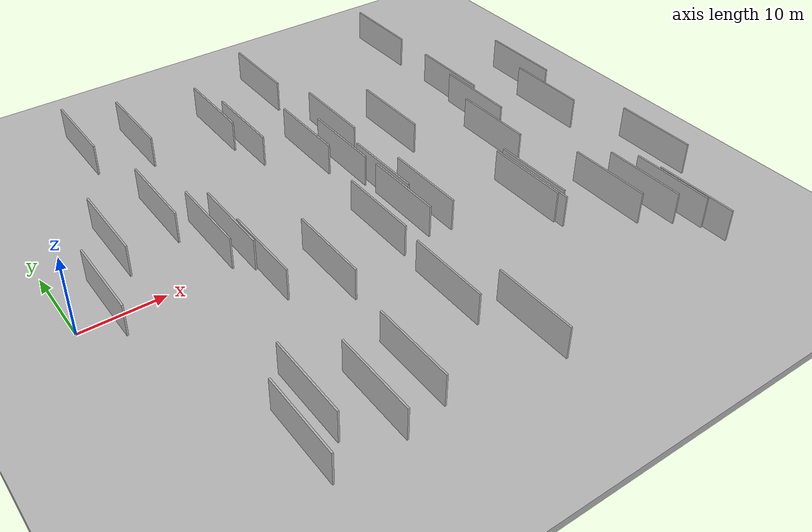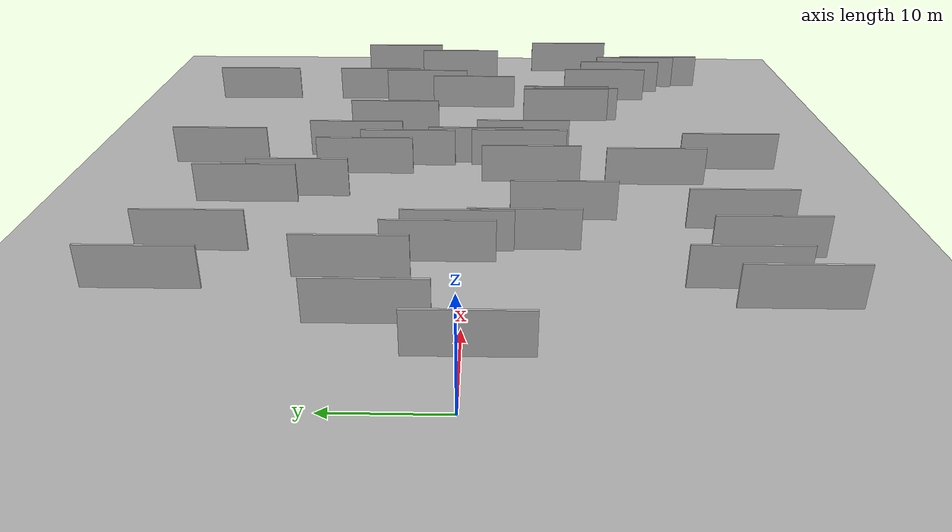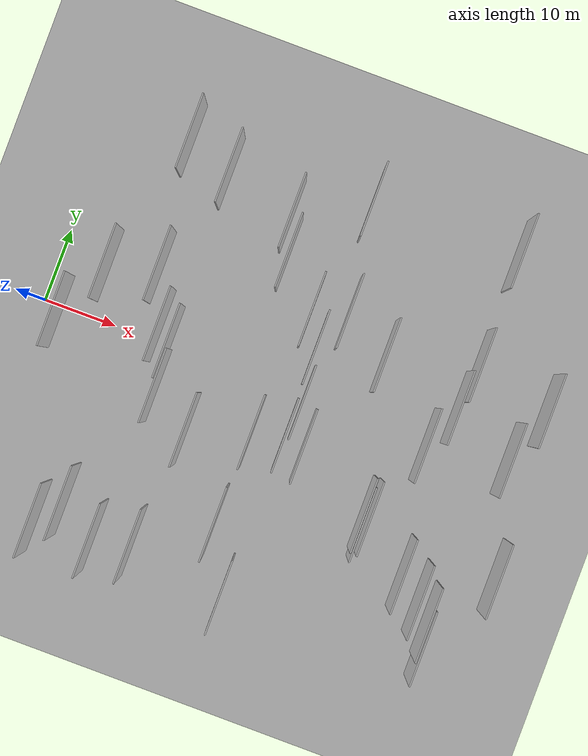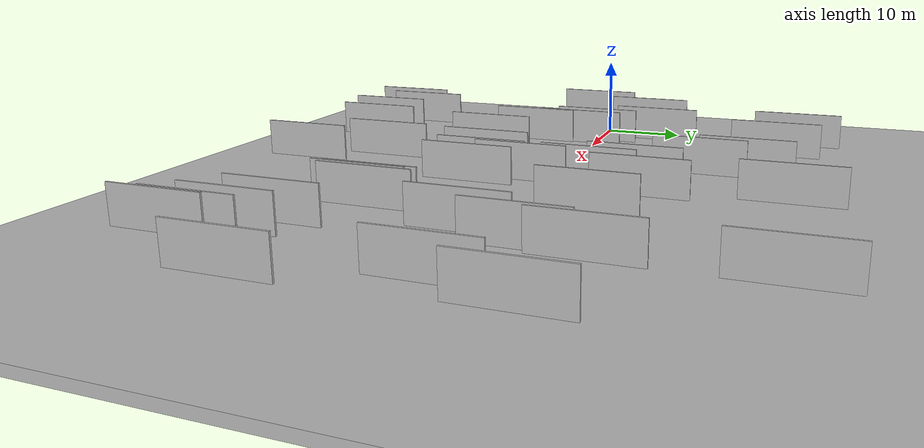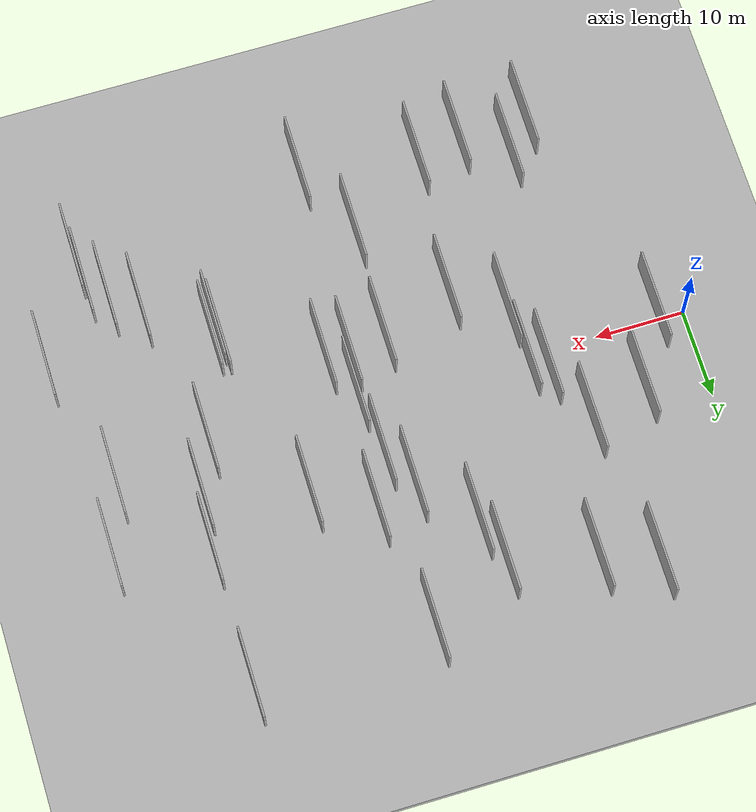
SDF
<?xml version="1.0" encoding="utf-8"?>

<sdf version="1.6">

   <world name="default">

      <gui fullscreen="0">

         <camera name="user_camera">

            <pose>-15 0 4.57585 0 0 0</pose>

            <view_controller>orbit</view_controller>

         </camera>

      </gui>

      <scene>

         <sky>

           <clouds>

             <speed>12</speed>

           </clouds>

         </sky>

         <ambient>0.4 0.4 0.4 1</ambient>

         <background>0.7 0.7 0.7 1</background>

         <shadows>1</shadows>

      </scene>

      <gravity>0 0 -9.8066</gravity>

      <magnetic_field>6e-06 2.3e-05 -4.2e-05</magnetic_field>

      <physics default="0" name="default_physics" type="ode">

         <ode>

            <solver>

               <type>quick</type>

               <iters>10</iters>

               <sor>1.0</sor>

               <use_dynamic_moi_rescaling>0</use_dynamic_moi_rescaling>

            </solver>

            <constraints>

               <cfm>0</cfm>

               <erp>0.2</erp>

               <contact_max_correcting_vel>100</contact_max_correcting_vel>

               <contact_surface_layer>0.001</contact_surface_layer>

            </constraints>

         </ode>

         <max_step_size>0.004</max_step_size>

         <real_time_factor>1</real_time_factor>

         <real_time_update_rate>250</real_time_update_rate>

      </physics>

      <light name="sun" type="directional">

         <cast_shadows>1</cast_shadows>

         <pose>0 0 10 0 0 0</pose>

         <diffuse>0.8 0.8 0.8 1</diffuse>

         <specular>0.2 0.2 0.2 1</specular>

         <attenuation>

            <range>1000</range>

            <constant>0.9</constant>

            <linear>0.01</linear>

            <quadratic>0.001</quadratic>

         </attenuation>

         <direction>-0.5 0.1 -0.9</direction>

      </light>

      <include>

         <name>ground_plane_1</name>

         <uri>model://HANNAS_ground_plane</uri>

         <pose>0 0 0  0 0 0</pose>

      </include>

      <include>

         <name>ground_plane_2</name>

         <uri>model://HANNAS_ground_plane</uri>

         <pose>100 0 0  0 0 0</pose>

      </include>

      <model name="HANNAS_wall_1">

         <static>1</static>

         <pose frame="">49.2912 -11.3729 2.5 0.000000 0.000000 1.570796</pose>

         <link name="link">

            <pose frame="">0 0 2.00 0 0 0</pose>

            <collision name="collision">

               <geometry>

                  <box>

                     <size>10.00 0.2 4.00</size>

                  </box>

               </geometry>

               <max_contacts>10</max_contacts>

               <surface>

                  <contact>

                     <ode/>

                  </contact>

                  <bounce/>

                  <friction>

                     <torsional>

                        <ode/>

                     </torsional>

                     <ode/>

                  </friction>

               </surface>

            </collision>

            <visual name="visual">

               <cast_shadows>0</cast_shadows>

               <geometry>

                  <box>

                     <size>10.00 0.2 4.00</size>

                  </box>

               </geometry>

               <material>

                  <script>

                     <uri>model://HANNAS_wall/materials/scripts</uri>

                     <uri>model://HANNAS_wall/materials/textures</uri>

                     <name>vrc/HANNAS_wall</name>

                  </script>

               </material>

            </visual>

            <self_collide>0</self_collide>

            <enable_wind>0</enable_wind>

            <kinematic>0</kinematic>

         </link>

      </model>

      <model name="HANNAS_wall_2">

         <static>1</static>

         <pose frame="">36.4695 -5.4138 2.5 0.000000 0.000000 1.570796</pose>

         <link name="link">

            <pose frame="">0 0 2.00 0 0 0</pose>

            <collision name="collision">

               <geometry>

                  <box>

                     <size>10.00 0.2 4.00</size>

                  </box>

               </geometry>

               <max_contacts>10</max_contacts>

               <surface>

                  <contact>

                     <ode/>

                  </contact>

                  <bounce/>

                  <friction>

                     <torsional>

                        <ode/>

                     </torsional>

                     <ode/>

                  </friction>

               </surface>

            </collision>

            <visual name="visual">

               <cast_shadows>0</cast_shadows>

               <geometry>

                  <box>

                     <size>10.00 0.2 4.00</size>

                  </box>

               </geometry>

               <material>

                  <script>

                     <uri>model://HANNAS_wall/materials/scripts</uri>

                     <uri>model://HANNAS_wall/materials/textures</uri>

                     <name>vrc/HANNAS_wall</name>

                  </script>

               </material>

            </visual>

            <self_collide>0</self_collide>

            <enable_wind>0</enable_wind>

            <kinematic>0</kinematic>

         </link>

      </model>

      <model name="HANNAS_wall_3">

         <static>1</static>

         <pose frame="">44.9676 8.5489 2.5 0.000000 0.000000 1.570796</pose>

         <link name="link">

            <pose frame="">0 0 2.00 0 0 0</pose>

            <collision name="collision">

               <geometry>

                  <box>

                     <size>10.00 0.2 4.00</size>

                  </box>

               </geometry>

               <max_contacts>10</max_contacts>

               <surface>

                  <contact>

                     <ode/>

                  </contact>

                  <bounce/>

                  <friction>

                     <torsional>

                        <ode/>

                     </torsional>

                     <ode/>

                  </friction>

               </surface>

            </collision>

            <visual name="visual">

               <cast_shadows>0</cast_shadows>

               <geometry>

                  <box>

                     <size>10.00 0.2 4.00</size>

                  </box>

               </geometry>

               <material>

                  <script>

                     <uri>model://HANNAS_wall/materials/scripts</uri>

                     <uri>model://HANNAS_wall/materials/textures</uri>

                     <name>vrc/HANNAS_wall</name>

                  </script>

               </material>

            </visual>

            <self_collide>0</self_collide>

            <enable_wind>0</enable_wind>

            <kinematic>0</kinematic>

         </link>

      </model>

      <model name="HANNAS_wall_4">

         <static>1</static>

         <pose frame="">7.3157 7.1480 2.5 0.000000 0.000000 1.570796</pose>

         <link name="link">

            <pose frame="">0 0 2.00 0 0 0</pose>

            <collision name="collision">

               <geometry>

                  <box>

                     <size>10.00 0.2 4.00</size>

                  </box>

               </geometry>

               <max_contacts>10</max_contacts>

               <surface>

                  <contact>

                     <ode/>

                  </contact>

                  <bounce/>

                  <friction>

                     <torsional>

                        <ode/>

                     </torsional>

                     <ode/>

                  </friction>

               </surface>

            </collision>

            <visual name="visual">

               <cast_shadows>0</cast_shadows>

               <geometry>

                  <box>

                     <size>10.00 0.2 4.00</size>

                  </box>

               </geometry>

               <material>

                  <script>

                     <uri>model://HANNAS_wall/materials/scripts</uri>

                     <uri>model://HANNAS_wall/materials/textures</uri>

                     <name>vrc/HANNAS_wall</name>

                  </script>

               </material>

            </visual>

            <self_collide>0</self_collide>

            <enable_wind>0</enable_wind>

            <kinematic>0</kinematic>

         </link>

      </model>

      <model name="HANNAS_wall_5">

         <static>1</static>

         <pose frame="">35.7856 -27.3494 2.5 0.000000 0.000000 1.570796</pose>

         <link name="link">

            <pose frame="">0 0 2.00 0 0 0</pose>

            <collision name="collision">

               <geometry>

                  <box>

                     <size>10.00 0.2 4.00</size>

                  </box>

               </geometry>

               <max_contacts>10</max_contacts>

               <surface>

                  <contact>

                     <ode/>

                  </contact>

                  <bounce/>

                  <friction>

                     <torsional>

                        <ode/>

                     </torsional>

                     <ode/>

                  </friction>

               </surface>

            </collision>

            <visual name="visual">

               <cast_shadows>0</cast_shadows>

               <geometry>

                  <box>

                     <size>10.00 0.2 4.00</size>

                  </box>

               </geometry>

               <material>

                  <script>

                     <uri>model://HANNAS_wall/materials/scripts</uri>

                     <uri>model://HANNAS_wall/materials/textures</uri>

                     <name>vrc/HANNAS_wall</name>

                  </script>

               </material>

            </visual>

            <self_collide>0</self_collide>

            <enable_wind>0</enable_wind>

            <kinematic>0</kinematic>

         </link>

      </model>

      <model name="HANNAS_wall_6">

         <static>1</static>

         <pose frame="">3.3829 -0.7247 2.5 0.000000 0.000000 1.570796</pose>

         <link name="link">

            <pose frame="">0 0 2.00 0 0 0</pose>

            <collision name="collision">

               <geometry>

                  <box>

                     <size>10.00 0.2 4.00</size>

                  </box>

               </geometry>

               <max_contacts>10</max_contacts>

               <surface>

                  <contact>

                     <ode/>

                  </contact>

                  <bounce/>

                  <friction>

                     <torsional>

                        <ode/>

                     </torsional>

                     <ode/>

                  </friction>

               </surface>

            </collision>

            <visual name="visual">

               <cast_shadows>0</cast_shadows>

               <geometry>

                  <box>

                     <size>10.00 0.2 4.00</size>

                  </box>

               </geometry>

               <material>

                  <script>

                     <uri>model://HANNAS_wall/materials/scripts</uri>

                     <uri>model://HANNAS_wall/materials/textures</uri>

                     <name>vrc/HANNAS_wall</name>

                  </script>

               </material>

            </visual>

            <self_collide>0</self_collide>

            <enable_wind>0</enable_wind>

            <kinematic>0</kinematic>

         </link>

      </model>

      <model name="HANNAS_wall_7">

         <static>1</static>

         <pose frame="">56.6194 11.5562 2.5 0.000000 0.000000 1.570796</pose>

         <link name="link">

            <pose frame="">0 0 2.00 0 0 0</pose>

            <collision name="collision">

               <geometry>

                  <box>

                     <size>10.00 0.2 4.00</size>

                  </box>

               </geometry>

               <max_contacts>10</max_contacts>

               <surface>

                  <contact>

                     <ode/>

                  </contact>

                  <bounce/>

                  <friction>

                     <torsional>

                        <ode/>

                     </torsional>

                     <ode/>

                  </friction>

               </surface>

            </collision>

            <visual name="visual">

               <cast_shadows>0</cast_shadows>

               <geometry>

                  <box>

                     <size>10.00 0.2 4.00</size>

                  </box>

               </geometry>

               <material>

                  <script>

                     <uri>model://HANNAS_wall/materials/scripts</uri>

                     <uri>model://HANNAS_wall/materials/textures</uri>

                     <name>vrc/HANNAS_wall</name>

                  </script>

               </material>

            </visual>

            <self_collide>0</self_collide>

            <enable_wind>0</enable_wind>

            <kinematic>0</kinematic>

         </link>

      </model>

      <model name="HANNAS_wall_8">

         <static>1</static>

         <pose frame="">18.6774 -5.3102 2.5 0.000000 0.000000 1.570796</pose>

         <link name="link">

            <pose frame="">0 0 2.00 0 0 0</pose>

            <collision name="collision">

               <geometry>

                  <box>

                     <size>10.00 0.2 4.00</size>

                  </box>

               </geometry>

               <max_contacts>10</max_contacts>

               <surface>

                  <contact>

                     <ode/>

                  </contact>

                  <bounce/>

                  <friction>

                     <torsional>

                        <ode/>

                     </torsional>

                     <ode/>

                  </friction>

               </surface>

            </collision>

            <visual name="visual">

               <cast_shadows>0</cast_shadows>

               <geometry>

                  <box>

                     <size>10.00 0.2 4.00</size>

                  </box>

               </geometry>

               <material>

                  <script>

                     <uri>model://HANNAS_wall/materials/scripts</uri>

                     <uri>model://HANNAS_wall/materials/textures</uri>

                     <name>vrc/HANNAS_wall</name>

                  </script>

               </material>

            </visual>

            <self_collide>0</self_collide>

            <enable_wind>0</enable_wind>

            <kinematic>0</kinematic>

         </link>

      </model>

      <model name="HANNAS_wall_9">

         <static>1</static>

         <pose frame="">50.1798 -11.4705 2.5 0.000000 0.000000 1.570796</pose>

         <link name="link">

            <pose frame="">0 0 2.00 0 0 0</pose>

            <collision name="collision">

               <geometry>

                  <box>

                     <size>10.00 0.2 4.00</size>

                  </box>

               </geometry>

               <max_contacts>10</max_contacts>

               <surface>

                  <contact>

                     <ode/>

                  </contact>

                  <bounce/>

                  <friction>

                     <torsional>

                        <ode/>

                     </torsional>

                     <ode/>

                  </friction>

               </surface>

            </collision>

            <visual name="visual">

               <cast_shadows>0</cast_shadows>

               <geometry>

                  <box>

                     <size>10.00 0.2 4.00</size>

                  </box>

               </geometry>

               <material>

                  <script>

                     <uri>model://HANNAS_wall/materials/scripts</uri>

                     <uri>model://HANNAS_wall/materials/textures</uri>

                     <name>vrc/HANNAS_wall</name>

                  </script>

               </material>

            </visual>

            <self_collide>0</self_collide>

            <enable_wind>0</enable_wind>

            <kinematic>0</kinematic>

         </link>

      </model>

      <model name="HANNAS_wall_10">

         <static>1</static>

         <pose frame="">62.0942 -24.4419 2.5 0.000000 0.000000 1.570796</pose>

         <link name="link">

            <pose frame="">0 0 2.00 0 0 0</pose>

            <collision name="collision">

               <geometry>

                  <box>

                     <size>10.00 0.2 4.00</size>

                  </box>

               </geometry>

               <max_contacts>10</max_contacts>

               <surface>

                  <contact>

                     <ode/>

                  </contact>

                  <bounce/>

                  <friction>

                     <torsional>

                        <ode/>

                     </torsional>

                     <ode/>

                  </friction>

               </surface>

            </collision>

            <visual name="visual">

               <cast_shadows>0</cast_shadows>

               <geometry>

                  <box>

                     <size>10.00 0.2 4.00</size>

                  </box>

               </geometry>

               <material>

                  <script>

                     <uri>model://HANNAS_wall/materials/scripts</uri>

                     <uri>model://HANNAS_wall/materials/textures</uri>

                     <name>vrc/HANNAS_wall</name>

                  </script>

               </material>

            </visual>

            <self_collide>0</self_collide>

            <enable_wind>0</enable_wind>

            <kinematic>0</kinematic>

         </link>

      </model>

      <model name="HANNAS_wall_11">

         <static>1</static>

         <pose frame="">55.9603 5.5726 2.5 0.000000 0.000000 1.570796</pose>

         <link name="link">

            <pose frame="">0 0 2.00 0 0 0</pose>

            <collision name="collision">

               <geometry>

                  <box>

                     <size>10.00 0.2 4.00</size>

                  </box>

               </geometry>

               <max_contacts>10</max_contacts>

               <surface>

                  <contact>

                     <ode/>

                  </contact>

                  <bounce/>

                  <friction>

                     <torsional>

                        <ode/>

                     </torsional>

                     <ode/>

                  </friction>

               </surface>

            </collision>

            <visual name="visual">

               <cast_shadows>0</cast_shadows>

               <geometry>

                  <box>

                     <size>10.00 0.2 4.00</size>

                  </box>

               </geometry>

               <material>

                  <script>

                     <uri>model://HANNAS_wall/materials/scripts</uri>

                     <uri>model://HANNAS_wall/materials/textures</uri>

                     <name>vrc/HANNAS_wall</name>

                  </script>

               </material>

            </visual>

            <self_collide>0</self_collide>

            <enable_wind>0</enable_wind>

            <kinematic>0</kinematic>

         </link>

      </model>

      <model name="HANNAS_wall_12">

         <static>1</static>

         <pose frame="">59.7716 -19.1227 2.5 0.000000 0.000000 1.570796</pose>

         <link name="link">

            <pose frame="">0 0 2.00 0 0 0</pose>

            <collision name="collision">

               <geometry>

                  <box>

                     <size>10.00 0.2 4.00</size>

                  </box>

               </geometry>

               <max_contacts>10</max_contacts>

               <surface>

                  <contact>

                     <ode/>

                  </contact>

                  <bounce/>

                  <friction>

                     <torsional>

                        <ode/>

                     </torsional>

                     <ode/>

                  </friction>

               </surface>

            </collision>

            <visual name="visual">

               <cast_shadows>0</cast_shadows>

               <geometry>

                  <box>

                     <size>10.00 0.2 4.00</size>

                  </box>

               </geometry>

               <material>

                  <script>

                     <uri>model://HANNAS_wall/materials/scripts</uri>

                     <uri>model://HANNAS_wall/materials/textures</uri>

                     <name>vrc/HANNAS_wall</name>

                  </script>

               </material>

            </visual>

            <self_collide>0</self_collide>

            <enable_wind>0</enable_wind>

            <kinematic>0</kinematic>

         </link>

      </model>

      <model name="HANNAS_wall_13">

         <static>1</static>

         <pose frame="">66.8213 9.1804 2.5 0.000000 0.000000 1.570796</pose>

         <link name="link">

            <pose frame="">0 0 2.00 0 0 0</pose>

            <collision name="collision">

               <geometry>

                  <box>

                     <size>10.00 0.2 4.00</size>

                  </box>

               </geometry>

               <max_contacts>10</max_contacts>

               <surface>

                  <contact>

                     <ode/>

                  </contact>

                  <bounce/>

                  <friction>

                     <torsional>

                        <ode/>

                     </torsional>

                     <ode/>

                  </friction>

               </surface>

            </collision>

            <visual name="visual">

               <cast_shadows>0</cast_shadows>

               <geometry>

                  <box>

                     <size>10.00 0.2 4.00</size>

                  </box>

               </geometry>

               <material>

                  <script>

                     <uri>model://HANNAS_wall/materials/scripts</uri>

                     <uri>model://HANNAS_wall/materials/textures</uri>

                     <name>vrc/HANNAS_wall</name>

                  </script>

               </material>

            </visual>

            <self_collide>0</self_collide>

            <enable_wind>0</enable_wind>

            <kinematic>0</kinematic>

         </link>

      </model>

      <model name="HANNAS_wall_14">

         <static>1</static>

         <pose frame="">61.7658 -21.4161 2.5 0.000000 0.000000 1.570796</pose>

         <link name="link">

            <pose frame="">0 0 2.00 0 0 0</pose>

            <collision name="collision">

               <geometry>

                  <box>

                     <size>10.00 0.2 4.00</size>

                  </box>

               </geometry>

               <max_contacts>10</max_contacts>

               <surface>

                  <contact>

                     <ode/>

                  </contact>

                  <bounce/>

                  <friction>

                     <torsional>

                        <ode/>

                     </torsional>

                     <ode/>

                  </friction>

               </surface>

            </collision>

            <visual name="visual">

               <cast_shadows>0</cast_shadows>

               <geometry>

                  <box>

                     <size>10.00 0.2 4.00</size>

                  </box>

               </geometry>

               <material>

                  <script>

                     <uri>model://HANNAS_wall/materials/scripts</uri>

                     <uri>model://HANNAS_wall/materials/textures</uri>

                     <name>vrc/HANNAS_wall</name>

                  </script>

               </material>

            </visual>

            <self_collide>0</self_collide>

            <enable_wind>0</enable_wind>

            <kinematic>0</kinematic>

         </link>

      </model>

      <model name="HANNAS_wall_15">

         <static>1</static>

         <pose frame="">53.7543 -0.3643 2.5 0.000000 0.000000 1.570796</pose>

         <link name="link">

            <pose frame="">0 0 2.00 0 0 0</pose>

            <collision name="collision">

               <geometry>

                  <box>

                     <size>10.00 0.2 4.00</size>

                  </box>

               </geometry>

               <max_contacts>10</max_contacts>

               <surface>

                  <contact>

                     <ode/>

                  </contact>

                  <bounce/>

                  <friction>

                     <torsional>

                        <ode/>

                     </torsional>

                     <ode/>

                  </friction>

               </surface>

            </collision>

            <visual name="visual">

               <cast_shadows>0</cast_shadows>

               <geometry>

                  <box>

                     <size>10.00 0.2 4.00</size>

                  </box>

               </geometry>

               <material>

                  <script>

                     <uri>model://HANNAS_wall/materials/scripts</uri>

                     <uri>model://HANNAS_wall/materials/textures</uri>

                     <name>vrc/HANNAS_wall</name>

                  </script>

               </material>

            </visual>

            <self_collide>0</self_collide>

            <enable_wind>0</enable_wind>

            <kinematic>0</kinematic>

         </link>

      </model>

      <model name="HANNAS_wall_16">

         <static>1</static>

         <pose frame="">18.3371 0.5597 2.5 0.000000 0.000000 1.570796</pose>

         <link name="link">

            <pose frame="">0 0 2.00 0 0 0</pose>

            <collision name="collision">

               <geometry>

                  <box>

                     <size>10.00 0.2 4.00</size>

                  </box>

               </geometry>

               <max_contacts>10</max_contacts>

               <surface>

                  <contact>

                     <ode/>

                  </contact>

                  <bounce/>

                  <friction>

                     <torsional>

                        <ode/>

                     </torsional>

                     <ode/>

                  </friction>

               </surface>

            </collision>

            <visual name="visual">

               <cast_shadows>0</cast_shadows>

               <geometry>

                  <box>

                     <size>10.00 0.2 4.00</size>

                  </box>

               </geometry>

               <material>

                  <script>

                     <uri>model://HANNAS_wall/materials/scripts</uri>

                     <uri>model://HANNAS_wall/materials/textures</uri>

                     <name>vrc/HANNAS_wall</name>

                  </script>

               </material>

            </visual>

            <self_collide>0</self_collide>

            <enable_wind>0</enable_wind>

            <kinematic>0</kinematic>

         </link>

      </model>

      <model name="HANNAS_wall_17">

         <static>1</static>

         <pose frame="">12.7365 -23.2910 2.5 0.000000 0.000000 1.570796</pose>

         <link name="link">

            <pose frame="">0 0 2.00 0 0 0</pose>

            <collision name="collision">

               <geometry>

                  <box>

                     <size>10.00 0.2 4.00</size>

                  </box>

               </geometry>

               <max_contacts>10</max_contacts>

               <surface>

                  <contact>

                     <ode/>

                  </contact>

                  <bounce/>

                  <friction>

                     <torsional>

                        <ode/>

                     </torsional>

                     <ode/>

                  </friction>

               </surface>

            </collision>

            <visual name="visual">

               <cast_shadows>0</cast_shadows>

               <geometry>

                  <box>

                     <size>10.00 0.2 4.00</size>

                  </box>

               </geometry>

               <material>

                  <script>

                     <uri>model://HANNAS_wall/materials/scripts</uri>

                     <uri>model://HANNAS_wall/materials/textures</uri>

                     <name>vrc/HANNAS_wall</name>

                  </script>

               </material>

            </visual>

            <self_collide>0</self_collide>

            <enable_wind>0</enable_wind>

            <kinematic>0</kinematic>

         </link>

      </model>

      <model name="HANNAS_wall_18">

         <static>1</static>

         <pose frame="">36.5861 26.3252 2.5 0.000000 0.000000 1.570796</pose>

         <link name="link">

            <pose frame="">0 0 2.00 0 0 0</pose>

            <collision name="collision">

               <geometry>

                  <box>

                     <size>10.00 0.2 4.00</size>

                  </box>

               </geometry>

               <max_contacts>10</max_contacts>

               <surface>

                  <contact>

                     <ode/>

                  </contact>

                  <bounce/>

                  <friction>

                     <torsional>

                        <ode/>

                     </torsional>

                     <ode/>

                  </friction>

               </surface>

            </collision>

            <visual name="visual">

               <cast_shadows>0</cast_shadows>

               <geometry>

                  <box>

                     <size>10.00 0.2 4.00</size>

                  </box>

               </geometry>

               <material>

                  <script>

                     <uri>model://HANNAS_wall/materials/scripts</uri>

                     <uri>model://HANNAS_wall/materials/textures</uri>

                     <name>vrc/HANNAS_wall</name>

                  </script>

               </material>

            </visual>

            <self_collide>0</self_collide>

            <enable_wind>0</enable_wind>

            <kinematic>0</kinematic>

         </link>

      </model>

      <model name="HANNAS_wall_19">

         <static>1</static>

         <pose frame="">11.8592 26.2166 2.5 0.000000 0.000000 1.570796</pose>

         <link name="link">

            <pose frame="">0 0 2.00 0 0 0</pose>

            <collision name="collision">

               <geometry>

                  <box>

                     <size>10.00 0.2 4.00</size>

                  </box>

               </geometry>

               <max_contacts>10</max_contacts>

               <surface>

                  <contact>

                     <ode/>

                  </contact>

                  <bounce/>

                  <friction>

                     <torsional>

                        <ode/>

                     </torsional>

                     <ode/>

                  </friction>

               </surface>

            </collision>

            <visual name="visual">

               <cast_shadows>0</cast_shadows>

               <geometry>

                  <box>

                     <size>10.00 0.2 4.00</size>

                  </box>

               </geometry>

               <material>

                  <script>

                     <uri>model://HANNAS_wall/materials/scripts</uri>

                     <uri>model://HANNAS_wall/materials/textures</uri>

                     <name>vrc/HANNAS_wall</name>

                  </script>

               </material>

            </visual>

            <self_collide>0</self_collide>

            <enable_wind>0</enable_wind>

            <kinematic>0</kinematic>

         </link>

      </model>

      <model name="HANNAS_wall_20">

         <static>1</static>

         <pose frame="">56.5438 26.7962 2.5 0.000000 0.000000 1.570796</pose>

         <link name="link">

            <pose frame="">0 0 2.00 0 0 0</pose>

            <collision name="collision">

               <geometry>

                  <box>

                     <size>10.00 0.2 4.00</size>

                  </box>

               </geometry>

               <max_contacts>10</max_contacts>

               <surface>

                  <contact>

                     <ode/>

                  </contact>

                  <bounce/>

                  <friction>

                     <torsional>

                        <ode/>

                     </torsional>

                     <ode/>

                  </friction>

               </surface>

            </collision>

            <visual name="visual">

               <cast_shadows>0</cast_shadows>

               <geometry>

                  <box>

                     <size>10.00 0.2 4.00</size>

                  </box>

               </geometry>

               <material>

                  <script>

                     <uri>model://HANNAS_wall/materials/scripts</uri>

                     <uri>model://HANNAS_wall/materials/textures</uri>

                     <name>vrc/HANNAS_wall</name>

                  </script>

               </material>

            </visual>

            <self_collide>0</self_collide>

            <enable_wind>0</enable_wind>

            <kinematic>0</kinematic>

         </link>

      </model>

      <model name="HANNAS_wall_21">

         <static>1</static>

         <pose frame="">64.3888 1.6308 2.5 0.000000 0.000000 1.570796</pose>

         <link name="link">

            <pose frame="">0 0 2.00 0 0 0</pose>

            <collision name="collision">

               <geometry>

                  <box>

                     <size>10.00 0.2 4.00</size>

                  </box>

               </geometry>

               <max_contacts>10</max_contacts>

               <surface>

                  <contact>

                     <ode/>

                  </contact>

                  <bounce/>

                  <friction>

                     <torsional>

                        <ode/>

                     </torsional>

                     <ode/>

                  </friction>

               </surface>

            </collision>

            <visual name="visual">

               <cast_shadows>0</cast_shadows>

               <geometry>

                  <box>

                     <size>10.00 0.2 4.00</size>

                  </box>

               </geometry>

               <material>

                  <script>

                     <uri>model://HANNAS_wall/materials/scripts</uri>

                     <uri>model://HANNAS_wall/materials/textures</uri>

                     <name>vrc/HANNAS_wall</name>

                  </script>

               </material>

            </visual>

            <self_collide>0</self_collide>

            <enable_wind>0</enable_wind>

            <kinematic>0</kinematic>

         </link>

      </model>

      <model name="HANNAS_wall_22">

         <static>1</static>

         <pose frame="">68.1017 -13.1992 2.5 0.000000 0.000000 1.570796</pose>

         <link name="link">

            <pose frame="">0 0 2.00 0 0 0</pose>

            <collision name="collision">

               <geometry>

                  <box>

                     <size>10.00 0.2 4.00</size>

                  </box>

               </geometry>

               <max_contacts>10</max_contacts>

               <surface>

                  <contact>

                     <ode/>

                  </contact>

                  <bounce/>

                  <friction>

                     <torsional>

                        <ode/>

                     </torsional>

                     <ode/>

                  </friction>

               </surface>

            </collision>

            <visual name="visual">

               <cast_shadows>0</cast_shadows>

               <geometry>

                  <box>

                     <size>10.00 0.2 4.00</size>

                  </box>

               </geometry>

               <material>

                  <script>

                     <uri>model://HANNAS_wall/materials/scripts</uri>

                     <uri>model://HANNAS_wall/materials/textures</uri>

                     <name>vrc/HANNAS_wall</name>

                  </script>

               </material>

            </visual>

            <self_collide>0</self_collide>

            <enable_wind>0</enable_wind>

            <kinematic>0</kinematic>

         </link>

      </model>

      <model name="HANNAS_wall_23">

         <static>1</static>

         <pose frame="">37.0577 -0.7599 2.5 0.000000 0.000000 1.570796</pose>

         <link name="link">

            <pose frame="">0 0 2.00 0 0 0</pose>

            <collision name="collision">

               <geometry>

                  <box>

                     <size>10.00 0.2 4.00</size>

                  </box>

               </geometry>

               <max_contacts>10</max_contacts>

               <surface>

                  <contact>

                     <ode/>

                  </contact>

                  <bounce/>

                  <friction>

                     <torsional>

                        <ode/>

                     </torsional>

                     <ode/>

                  </friction>

               </surface>

            </collision>

            <visual name="visual">

               <cast_shadows>0</cast_shadows>

               <geometry>

                  <box>

                     <size>10.00 0.2 4.00</size>

                  </box>

               </geometry>

               <material>

                  <script>

                     <uri>model://HANNAS_wall/materials/scripts</uri>

                     <uri>model://HANNAS_wall/materials/textures</uri>

                     <name>vrc/HANNAS_wall</name>

                  </script>

               </material>

            </visual>

            <self_collide>0</self_collide>

            <enable_wind>0</enable_wind>

            <kinematic>0</kinematic>

         </link>

      </model>

      <model name="HANNAS_wall_24">

         <static>1</static>

         <pose frame="">49.5408 -12.4997 2.5 0.000000 0.000000 1.570796</pose>

         <link name="link">

            <pose frame="">0 0 2.00 0 0 0</pose>

            <collision name="collision">

               <geometry>

                  <box>

                     <size>10.00 0.2 4.00</size>

                  </box>

               </geometry>

               <max_contacts>10</max_contacts>

               <surface>

                  <contact>

                     <ode/>

                  </contact>

                  <bounce/>

                  <friction>

                     <torsional>

                        <ode/>

                     </torsional>

                     <ode/>

                  </friction>

               </surface>

            </collision>

            <visual name="visual">

               <cast_shadows>0</cast_shadows>

               <geometry>

                  <box>

                     <size>10.00 0.2 4.00</size>

                  </box>

               </geometry>

               <material>

                  <script>

                     <uri>model://HANNAS_wall/materials/scripts</uri>

                     <uri>model://HANNAS_wall/materials/textures</uri>

                     <name>vrc/HANNAS_wall</name>

                  </script>

               </material>

            </visual>

            <self_collide>0</self_collide>

            <enable_wind>0</enable_wind>

            <kinematic>0</kinematic>

         </link>

      </model>

      <model name="HANNAS_wall_25">

         <static>1</static>

         <pose frame="">34.1021 10.6718 2.5 0.000000 0.000000 1.570796</pose>

         <link name="link">

            <pose frame="">0 0 2.00 0 0 0</pose>

            <collision name="collision">

               <geometry>

                  <box>

                     <size>10.00 0.2 4.00</size>

                  </box>

               </geometry>

               <max_contacts>10</max_contacts>

               <surface>

                  <contact>

                     <ode/>

                  </contact>

                  <bounce/>

                  <friction>

                     <torsional>

                        <ode/>

                     </torsional>

                     <ode/>

                  </friction>

               </surface>

            </collision>

            <visual name="visual">

               <cast_shadows>0</cast_shadows>

               <geometry>

                  <box>

                     <size>10.00 0.2 4.00</size>

                  </box>

               </geometry>

               <material>

                  <script>

                     <uri>model://HANNAS_wall/materials/scripts</uri>

                     <uri>model://HANNAS_wall/materials/textures</uri>

                     <name>vrc/HANNAS_wall</name>

                  </script>

               </material>

            </visual>

            <self_collide>0</self_collide>

            <enable_wind>0</enable_wind>

            <kinematic>0</kinematic>

         </link>

      </model>

      <model name="HANNAS_wall_26">

         <static>1</static>

         <pose frame="">16.4777 2.1630 2.5 0.000000 0.000000 1.570796</pose>

         <link name="link">

            <pose frame="">0 0 2.00 0 0 0</pose>

            <collision name="collision">

               <geometry>

                  <box>

                     <size>10.00 0.2 4.00</size>

                  </box>

               </geometry>

               <max_contacts>10</max_contacts>

               <surface>

                  <contact>

                     <ode/>

                  </contact>

                  <bounce/>

                  <friction>

                     <torsional>

                        <ode/>

                     </torsional>

                     <ode/>

                  </friction>

               </surface>

            </collision>

            <visual name="visual">

               <cast_shadows>0</cast_shadows>

               <geometry>

                  <box>

                     <size>10.00 0.2 4.00</size>

                  </box>

               </geometry>

               <material>

                  <script>

                     <uri>model://HANNAS_wall/materials/scripts</uri>

                     <uri>model://HANNAS_wall/materials/textures</uri>

                     <name>vrc/HANNAS_wall</name>

                  </script>

               </material>

            </visual>

            <self_collide>0</self_collide>

            <enable_wind>0</enable_wind>

            <kinematic>0</kinematic>

         </link>

      </model>

      <model name="HANNAS_wall_27">

         <static>1</static>

         <pose frame="">28.7744 16.5775 2.5 0.000000 0.000000 1.570796</pose>

         <link name="link">

            <pose frame="">0 0 2.00 0 0 0</pose>

            <collision name="collision">

               <geometry>

                  <box>

                     <size>10.00 0.2 4.00</size>

                  </box>

               </geometry>

               <max_contacts>10</max_contacts>

               <surface>

                  <contact>

                     <ode/>

                  </contact>

                  <bounce/>

                  <friction>

                     <torsional>

                        <ode/>

                     </torsional>

                     <ode/>

                  </friction>

               </surface>

            </collision>

            <visual name="visual">

               <cast_shadows>0</cast_shadows>

               <geometry>

                  <box>

                     <size>10.00 0.2 4.00</size>

                  </box>

               </geometry>

               <material>

                  <script>

                     <uri>model://HANNAS_wall/materials/scripts</uri>

                     <uri>model://HANNAS_wall/materials/textures</uri>

                     <name>vrc/HANNAS_wall</name>

                  </script>

               </material>

            </visual>

            <self_collide>0</self_collide>

            <enable_wind>0</enable_wind>

            <kinematic>0</kinematic>

         </link>

      </model>

      <model name="HANNAS_wall_28">

         <static>1</static>

         <pose frame="">13.8453 9.2939 2.5 0.000000 0.000000 1.570796</pose>

         <link name="link">

            <pose frame="">0 0 2.00 0 0 0</pose>

            <collision name="collision">

               <geometry>

                  <box>

                     <size>10.00 0.2 4.00</size>

                  </box>

               </geometry>

               <max_contacts>10</max_contacts>

               <surface>

                  <contact>

                     <ode/>

                  </contact>

                  <bounce/>

                  <friction>

                     <torsional>

                        <ode/>

                     </torsional>

                     <ode/>

                  </friction>

               </surface>

            </collision>

            <visual name="visual">

               <cast_shadows>0</cast_shadows>

               <geometry>

                  <box>

                     <size>10.00 0.2 4.00</size>

                  </box>

               </geometry>

               <material>

                  <script>

                     <uri>model://HANNAS_wall/materials/scripts</uri>

                     <uri>model://HANNAS_wall/materials/textures</uri>

                     <name>vrc/HANNAS_wall</name>

                  </script>

               </material>

            </visual>

            <self_collide>0</self_collide>

            <enable_wind>0</enable_wind>

            <kinematic>0</kinematic>

         </link>

      </model>

      <model name="HANNAS_wall_29">

         <static>1</static>

         <pose frame="">24.2351 -9.1933 2.5 0.000000 0.000000 1.570796</pose>

         <link name="link">

            <pose frame="">0 0 2.00 0 0 0</pose>

            <collision name="collision">

               <geometry>

                  <box>

                     <size>10.00 0.2 4.00</size>

                  </box>

               </geometry>

               <max_contacts>10</max_contacts>

               <surface>

                  <contact>

                     <ode/>

                  </contact>

                  <bounce/>

                  <friction>

                     <torsional>

                        <ode/>

                     </torsional>

                     <ode/>

                  </friction>

               </surface>

            </collision>

            <visual name="visual">

               <cast_shadows>0</cast_shadows>

               <geometry>

                  <box>

                     <size>10.00 0.2 4.00</size>

                  </box>

               </geometry>

               <material>

                  <script>

                     <uri>model://HANNAS_wall/materials/scripts</uri>

                     <uri>model://HANNAS_wall/materials/textures</uri>

                     <name>vrc/HANNAS_wall</name>

                  </script>

               </material>

            </visual>

            <self_collide>0</self_collide>

            <enable_wind>0</enable_wind>

            <kinematic>0</kinematic>

         </link>

      </model>

      <model name="HANNAS_wall_30">

         <static>1</static>

         <pose frame="">36.2458 6.3484 2.5 0.000000 0.000000 1.570796</pose>

         <link name="link">

            <pose frame="">0 0 2.00 0 0 0</pose>

            <collision name="collision">

               <geometry>

                  <box>

                     <size>10.00 0.2 4.00</size>

                  </box>

               </geometry>

               <max_contacts>10</max_contacts>

               <surface>

                  <contact>

                     <ode/>

                  </contact>

                  <bounce/>

                  <friction>

                     <torsional>

                        <ode/>

                     </torsional>

                     <ode/>

                  </friction>

               </surface>

            </collision>

            <visual name="visual">

               <cast_shadows>0</cast_shadows>

               <geometry>

                  <box>

                     <size>10.00 0.2 4.00</size>

                  </box>

               </geometry>

               <material>

                  <script>

                     <uri>model://HANNAS_wall/materials/scripts</uri>

                     <uri>model://HANNAS_wall/materials/textures</uri>

                     <name>vrc/HANNAS_wall</name>

                  </script>

               </material>

            </visual>

            <self_collide>0</self_collide>

            <enable_wind>0</enable_wind>

            <kinematic>0</kinematic>

         </link>

      </model>

      <model name="HANNAS_wall_31">

         <static>1</static>

         <pose frame="">22.7909 -25.3571 2.5 0.000000 0.000000 1.570796</pose>

         <link name="link">

            <pose frame="">0 0 2.00 0 0 0</pose>

            <collision name="collision">

               <geometry>

                  <box>

                     <size>10.00 0.2 4.00</size>

                  </box>

               </geometry>

               <max_contacts>10</max_contacts>

               <surface>

                  <contact>

                     <ode/>

                  </contact>

                  <bounce/>

                  <friction>

                     <torsional>

                        <ode/>

                     </torsional>

                     <ode/>

                  </friction>

               </surface>

            </collision>

            <visual name="visual">

               <cast_shadows>0</cast_shadows>

               <geometry>

                  <box>

                     <size>10.00 0.2 4.00</size>

                  </box>

               </geometry>

               <material>

                  <script>

                     <uri>model://HANNAS_wall/materials/scripts</uri>

                     <uri>model://HANNAS_wall/materials/textures</uri>

                     <name>vrc/HANNAS_wall</name>

                  </script>

               </material>

            </visual>

            <self_collide>0</self_collide>

            <enable_wind>0</enable_wind>

            <kinematic>0</kinematic>

         </link>

      </model>

      <model name="HANNAS_wall_32">

         <static>1</static>

         <pose frame="">56.6520 -16.8185 2.5 0.000000 0.000000 1.570796</pose>

         <link name="link">

            <pose frame="">0 0 2.00 0 0 0</pose>

            <collision name="collision">

               <geometry>

                  <box>

                     <size>10.00 0.2 4.00</size>

                  </box>

               </geometry>

               <max_contacts>10</max_contacts>

               <surface>

                  <contact>

                     <ode/>

                  </contact>

                  <bounce/>

                  <friction>

                     <torsional>

                        <ode/>

                     </torsional>

                     <ode/>

                  </friction>

               </surface>

            </collision>

            <visual name="visual">

               <cast_shadows>0</cast_shadows>

               <geometry>

                  <box>

                     <size>10.00 0.2 4.00</size>

                  </box>

               </geometry>

               <material>

                  <script>

                     <uri>model://HANNAS_wall/materials/scripts</uri>

                     <uri>model://HANNAS_wall/materials/textures</uri>

                     <name>vrc/HANNAS_wall</name>

                  </script>

               </material>

            </visual>

            <self_collide>0</self_collide>

            <enable_wind>0</enable_wind>

            <kinematic>0</kinematic>

         </link>

      </model>

      <model name="HANNAS_wall_33">

         <static>1</static>

         <pose frame="">32.3443 -6.5044 2.5 0.000000 0.000000 1.570796</pose>

         <link name="link">

            <pose frame="">0 0 2.00 0 0 0</pose>

            <collision name="collision">

               <geometry>

                  <box>

                     <size>10.00 0.2 4.00</size>

                  </box>

               </geometry>

               <max_contacts>10</max_contacts>

               <surface>

                  <contact>

                     <ode/>

                  </contact>

                  <bounce/>

                  <friction>

                     <torsional>

                        <ode/>

                     </torsional>

                     <ode/>

                  </friction>

               </surface>

            </collision>

            <visual name="visual">

               <cast_shadows>0</cast_shadows>

               <geometry>

                  <box>

                     <size>10.00 0.2 4.00</size>

                  </box>

               </geometry>

               <material>

                  <script>

                     <uri>model://HANNAS_wall/materials/scripts</uri>

                     <uri>model://HANNAS_wall/materials/textures</uri>

                     <name>vrc/HANNAS_wall</name>

                  </script>

               </material>

            </visual>

            <self_collide>0</self_collide>

            <enable_wind>0</enable_wind>

            <kinematic>0</kinematic>

         </link>

      </model>

      <model name="HANNAS_wall_34">

         <static>1</static>

         <pose frame="">39.1745 -5.8962 2.5 0.000000 0.000000 1.570796</pose>

         <link name="link">

            <pose frame="">0 0 2.00 0 0 0</pose>

            <collision name="collision">

               <geometry>

                  <box>

                     <size>10.00 0.2 4.00</size>

                  </box>

               </geometry>

               <max_contacts>10</max_contacts>

               <surface>

                  <contact>

                     <ode/>

                  </contact>

                  <bounce/>

                  <friction>

                     <torsional>

                        <ode/>

                     </torsional>

                     <ode/>

                  </friction>

               </surface>

            </collision>

            <visual name="visual">

               <cast_shadows>0</cast_shadows>

               <geometry>

                  <box>

                     <size>10.00 0.2 4.00</size>

                  </box>

               </geometry>

               <material>

                  <script>

                     <uri>model://HANNAS_wall/materials/scripts</uri>

                     <uri>model://HANNAS_wall/materials/textures</uri>

                     <name>vrc/HANNAS_wall</name>

                  </script>

               </material>

            </visual>

            <self_collide>0</self_collide>

            <enable_wind>0</enable_wind>

            <kinematic>0</kinematic>

         </link>

      </model>

      <model name="HANNAS_wall_35">

         <static>1</static>

         <pose frame="">31.9005 -19.0306 2.5 0.000000 0.000000 1.570796</pose>

         <link name="link">

            <pose frame="">0 0 2.00 0 0 0</pose>

            <collision name="collision">

               <geometry>

                  <box>

                     <size>10.00 0.2 4.00</size>

                  </box>

               </geometry>

               <max_contacts>10</max_contacts>

               <surface>

                  <contact>

                     <ode/>

                  </contact>

                  <bounce/>

                  <friction>

                     <torsional>

                        <ode/>

                     </torsional>

                     <ode/>

                  </friction>

               </surface>

            </collision>

            <visual name="visual">

               <cast_shadows>0</cast_shadows>

               <geometry>

                  <box>

                     <size>10.00 0.2 4.00</size>

                  </box>

               </geometry>

               <material>

                  <script>

                     <uri>model://HANNAS_wall/materials/scripts</uri>

                     <uri>model://HANNAS_wall/materials/textures</uri>

                     <name>vrc/HANNAS_wall</name>

                  </script>

               </material>

            </visual>

            <self_collide>0</self_collide>

            <enable_wind>0</enable_wind>

            <kinematic>0</kinematic>

         </link>

      </model>

      <model name="HANNAS_wall_36">

         <static>1</static>

         <pose frame="">17.7483 -26.4797 2.5 0.000000 0.000000 1.570796</pose>

         <link name="link">

            <pose frame="">0 0 2.00 0 0 0</pose>

            <collision name="collision">

               <geometry>

                  <box>

                     <size>10.00 0.2 4.00</size>

                  </box>

               </geometry>

               <max_contacts>10</max_contacts>

               <surface>

                  <contact>

                     <ode/>

                  </contact>

                  <bounce/>

                  <friction>

                     <torsional>

                        <ode/>

                     </torsional>

                     <ode/>

                  </friction>

               </surface>

            </collision>

            <visual name="visual">

               <cast_shadows>0</cast_shadows>

               <geometry>

                  <box>

                     <size>10.00 0.2 4.00</size>

                  </box>

               </geometry>

               <material>

                  <script>

                     <uri>model://HANNAS_wall/materials/scripts</uri>

                     <uri>model://HANNAS_wall/materials/textures</uri>

                     <name>vrc/HANNAS_wall</name>

                  </script>

               </material>

            </visual>

            <self_collide>0</self_collide>

            <enable_wind>0</enable_wind>

            <kinematic>0</kinematic>

         </link>

      </model>

      <model name="HANNAS_wall_37">

         <static>1</static>

         <pose frame="">38.6764 12.1189 2.5 0.000000 0.000000 1.570796</pose>

         <link name="link">

            <pose frame="">0 0 2.00 0 0 0</pose>

            <collision name="collision">

               <geometry>

                  <box>

                     <size>10.00 0.2 4.00</size>

                  </box>

               </geometry>

               <max_contacts>10</max_contacts>

               <surface>

                  <contact>

                     <ode/>

                  </contact>

                  <bounce/>

                  <friction>

                     <torsional>

                        <ode/>

                     </torsional>

                     <ode/>

                  </friction>

               </surface>

            </collision>

            <visual name="visual">

               <cast_shadows>0</cast_shadows>

               <geometry>

                  <box>

                     <size>10.00 0.2 4.00</size>

                  </box>

               </geometry>

               <material>

                  <script>

                     <uri>model://HANNAS_wall/materials/scripts</uri>

                     <uri>model://HANNAS_wall/materials/textures</uri>

                     <name>vrc/HANNAS_wall</name>

                  </script>

               </material>

            </visual>

            <self_collide>0</self_collide>

            <enable_wind>0</enable_wind>

            <kinematic>0</kinematic>

         </link>

      </model>

      <model name="HANNAS_wall_38">

         <static>1</static>

         <pose frame="">17.9949 23.9394 2.5 0.000000 0.000000 1.570796</pose>

         <link name="link">

            <pose frame="">0 0 2.00 0 0 0</pose>

            <collision name="collision">

               <geometry>

                  <box>

                     <size>10.00 0.2 4.00</size>

                  </box>

               </geometry>

               <max_contacts>10</max_contacts>

               <surface>

                  <contact>

                     <ode/>

                  </contact>

                  <bounce/>

                  <friction>

                     <torsional>

                        <ode/>

                     </torsional>

                     <ode/>

                  </friction>

               </surface>

            </collision>

            <visual name="visual">

               <cast_shadows>0</cast_shadows>

               <geometry>

                  <box>

                     <size>10.00 0.2 4.00</size>

                  </box>

               </geometry>

               <material>

                  <script>

                     <uri>model://HANNAS_wall/materials/scripts</uri>

                     <uri>model://HANNAS_wall/materials/textures</uri>

                     <name>vrc/HANNAS_wall</name>

                  </script>

               </material>

            </visual>

            <self_collide>0</self_collide>

            <enable_wind>0</enable_wind>

            <kinematic>0</kinematic>

         </link>

      </model>

      <model name="HANNAS_wall_39">

         <static>1</static>

         <pose frame="">27.4268 21.4232 2.5 0.000000 0.000000 1.570796</pose>

         <link name="link">

            <pose frame="">0 0 2.00 0 0 0</pose>

            <collision name="collision">

               <geometry>

                  <box>

                     <size>10.00 0.2 4.00</size>

                  </box>

               </geometry>

               <max_contacts>10</max_contacts>

               <surface>

                  <contact>

                     <ode/>

                  </contact>

                  <bounce/>

                  <friction>

                     <torsional>

                        <ode/>

                     </torsional>

                     <ode/>

                  </friction>

               </surface>

            </collision>

            <visual name="visual">

               <cast_shadows>0</cast_shadows>

               <geometry>

                  <box>

                     <size>10.00 0.2 4.00</size>

                  </box>

               </geometry>

               <material>

                  <script>

                     <uri>model://HANNAS_wall/materials/scripts</uri>

                     <uri>model://HANNAS_wall/materials/textures</uri>

                     <name>vrc/HANNAS_wall</name>

                  </script>

               </material>

            </visual>

            <self_collide>0</self_collide>

            <enable_wind>0</enable_wind>

            <kinematic>0</kinematic>

         </link>

      </model>

      <model name="HANNAS_wall_40">

         <static>1</static>

         <pose frame="">9.9268 -26.6853 2.5 0.000000 0.000000 1.570796</pose>

         <link name="link">

            <pose frame="">0 0 2.00 0 0 0</pose>

            <collision name="collision">

               <geometry>

                  <box>

                     <size>10.00 0.2 4.00</size>

                  </box>

               </geometry>

               <max_contacts>10</max_contacts>

               <surface>

                  <contact>

                     <ode/>

                  </contact>

                  <bounce/>

                  <friction>

                     <torsional>

                        <ode/>

                     </torsional>

                     <ode/>

                  </friction>

               </surface>

            </collision>

            <visual name="visual">

               <cast_shadows>0</cast_shadows>

               <geometry>

                  <box>

                     <size>10.00 0.2 4.00</size>

                  </box>

               </geometry>

               <material>

                  <script>

                     <uri>model://HANNAS_wall/materials/scripts</uri>

                     <uri>model://HANNAS_wall/materials/textures</uri>

                     <name>vrc/HANNAS_wall</name>

                  </script>

               </material>

            </visual>

            <self_collide>0</self_collide>

            <enable_wind>0</enable_wind>

            <kinematic>0</kinematic>

         </link>

      </model>

   </world>

</sdf>
